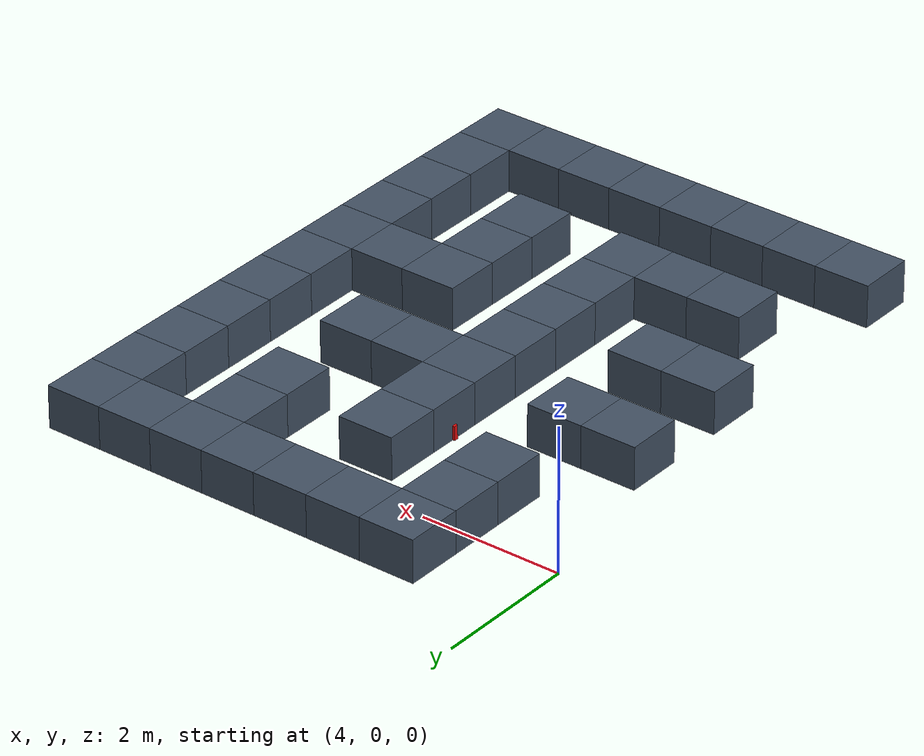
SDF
<sdf version="1.9">
 <world name="limo_maze">
  <model name="wall_8_0">
   <static>true</static>
   <pose>5.6000000000000005 0.8 0.3 0 0 0</pose>
   <link name="body">
    <collision name="collision"><geometry><box><size>0.8 0.8 0.6</size></box></geometry></collision>
    <visual name="visual">
     <geometry><box><size>0.8 0.8 0.6</size></box></geometry>
     <material><ambient>0.26 0.32 0.39 1</ambient><diffuse>0.26 0.32 0.39 1</diffuse></material>
    </visual>
   </link>
  </model>
  <model name="wall_9_0">
   <static>true</static>
   <pose>6.4 0.8 0.3 0 0 0</pose>
   <link name="body">
    <collision name="collision"><geometry><box><size>0.8 0.8 0.6</size></box></geometry></collision>
    <visual name="visual">
     <geometry><box><size>0.8 0.8 0.6</size></box></geometry>
     <material><ambient>0.26 0.32 0.39 1</ambient><diffuse>0.26 0.32 0.39 1</diffuse></material>
    </visual>
   </link>
  </model>
  <model name="wall_10_0">
   <static>true</static>
   <pose>7.2 0.8 0.3 0 0 0</pose>
   <link name="body">
    <collision name="collision"><geometry><box><size>0.8 0.8 0.6</size></box></geometry></collision>
    <visual name="visual">
     <geometry><box><size>0.8 0.8 0.6</size></box></geometry>
     <material><ambient>0.26 0.32 0.39 1</ambient><diffuse>0.26 0.32 0.39 1</diffuse></material>
    </visual>
   </link>
  </model>
  <model name="wall_11_0">
   <static>true</static>
   <pose>8.0 0.8 0.3 0 0 0</pose>
   <link name="body">
    <collision name="collision"><geometry><box><size>0.8 0.8 0.6</size></box></geometry></collision>
    <visual name="visual">
     <geometry><box><size>0.8 0.8 0.6</size></box></geometry>
     <material><ambient>0.26 0.32 0.39 1</ambient><diffuse>0.26 0.32 0.39 1</diffuse></material>
    </visual>
   </link>
  </model>
  <model name="wall_12_0">
   <static>true</static>
   <pose>8.8 0.8 0.3 0 0 0</pose>
   <link name="body">
    <collision name="collision"><geometry><box><size>0.8 0.8 0.6</size></box></geometry></collision>
    <visual name="visual">
     <geometry><box><size>0.8 0.8 0.6</size></box></geometry>
     <material><ambient>0.26 0.32 0.39 1</ambient><diffuse>0.26 0.32 0.39 1</diffuse></material>
    </visual>
   </link>
  </model>
  <model name="wall_13_0">
   <static>true</static>
   <pose>9.600000000000001 0.8 0.3 0 0 0</pose>
   <link name="body">
    <collision name="collision"><geometry><box><size>0.8 0.8 0.6</size></box></geometry></collision>
    <visual name="visual">
     <geometry><box><size>0.8 0.8 0.6</size></box></geometry>
     <material><ambient>0.26 0.32 0.39 1</ambient><diffuse>0.26 0.32 0.39 1</diffuse></material>
    </visual>
   </link>
  </model>
  <model name="wall_14_0">
   <static>true</static>
   <pose>10.4 0.8 0.3 0 0 0</pose>
   <link name="body">
    <collision name="collision"><geometry><box><size>0.8 0.8 0.6</size></box></geometry></collision>
    <visual name="visual">
     <geometry><box><size>0.8 0.8 0.6</size></box></geometry>
     <material><ambient>0.26 0.32 0.39 1</ambient><diffuse>0.26 0.32 0.39 1</diffuse></material>
    </visual>
   </link>
  </model>
  <model name="wall_8_1">
   <static>true</static>
   <pose>5.6000000000000005 0.0 0.3 0 0 0</pose>
   <link name="body">
    <collision name="collision"><geometry><box><size>0.8 0.8 0.6</size></box></geometry></collision>
    <visual name="visual">
     <geometry><box><size>0.8 0.8 0.6</size></box></geometry>
     <material><ambient>0.26 0.32 0.39 1</ambient><diffuse>0.26 0.32 0.39 1</diffuse></material>
    </visual>
   </link>
  </model>
  <model name="wall_12_1">
   <static>true</static>
   <pose>8.8 0.0 0.3 0 0 0</pose>
   <link name="body">
    <collision name="collision"><geometry><box><size>0.8 0.8 0.6</size></box></geometry></collision>
    <visual name="visual">
     <geometry><box><size>0.8 0.8 0.6</size></box></geometry>
     <material><ambient>0.26 0.32 0.39 1</ambient><diffuse>0.26 0.32 0.39 1</diffuse></material>
    </visual>
   </link>
  </model>
  <model name="wall_14_1">
   <static>true</static>
   <pose>10.4 0.0 0.3 0 0 0</pose>
   <link name="body">
    <collision name="collision"><geometry><box><size>0.8 0.8 0.6</size></box></geometry></collision>
    <visual name="visual">
     <geometry><box><size>0.8 0.8 0.6</size></box></geometry>
     <material><ambient>0.26 0.32 0.39 1</ambient><diffuse>0.26 0.32 0.39 1</diffuse></material>
    </visual>
   </link>
  </model>
  <model name="wall_8_2">
   <static>true</static>
   <pose>5.6000000000000005 -0.8 0.3 0 0 0</pose>
   <link name="body">
    <collision name="collision"><geometry><box><size>0.8 0.8 0.6</size></box></geometry></collision>
    <visual name="visual">
     <geometry><box><size>0.8 0.8 0.6</size></box></geometry>
     <material><ambient>0.26 0.32 0.39 1</ambient><diffuse>0.26 0.32 0.39 1</diffuse></material>
    </visual>
   </link>
  </model>
  <model name="wall_10_2">
   <static>true</static>
   <pose>7.2 -0.8 0.3 0 0 0</pose>
   <link name="body">
    <collision name="collision"><geometry><box><size>0.8 0.8 0.6</size></box></geometry></collision>
    <visual name="visual">
     <geometry><box><size>0.8 0.8 0.6</size></box></geometry>
     <material><ambient>0.26 0.32 0.39 1</ambient><diffuse>0.26 0.32 0.39 1</diffuse></material>
    </visual>
   </link>
  </model>
  <model name="wall_12_2">
   <static>true</static>
   <pose>8.8 -0.8 0.3 0 0 0</pose>
   <link name="body">
    <collision name="collision"><geometry><box><size>0.8 0.8 0.6</size></box></geometry></collision>
    <visual name="visual">
     <geometry><box><size>0.8 0.8 0.6</size></box></geometry>
     <material><ambient>0.26 0.32 0.39 1</ambient><diffuse>0.26 0.32 0.39 1</diffuse></material>
    </visual>
   </link>
  </model>
  <model name="wall_14_2">
   <static>true</static>
   <pose>10.4 -0.8 0.3 0 0 0</pose>
   <link name="body">
    <collision name="collision"><geometry><box><size>0.8 0.8 0.6</size></box></geometry></collision>
    <visual name="visual">
     <geometry><box><size>0.8 0.8 0.6</size></box></geometry>
     <material><ambient>0.26 0.32 0.39 1</ambient><diffuse>0.26 0.32 0.39 1</diffuse></material>
    </visual>
   </link>
  </model>
  <model name="wall_10_3">
   <static>true</static>
   <pose>7.2 -1.6 0.3 0 0 0</pose>
   <link name="body">
    <collision name="collision"><geometry><box><size>0.8 0.8 0.6</size></box></geometry></collision>
    <visual name="visual">
     <geometry><box><size>0.8 0.8 0.6</size></box></geometry>
     <material><ambient>0.26 0.32 0.39 1</ambient><diffuse>0.26 0.32 0.39 1</diffuse></material>
    </visual>
   </link>
  </model>
  <model name="wall_14_3">
   <static>true</static>
   <pose>10.4 -1.6 0.3 0 0 0</pose>
   <link name="body">
    <collision name="collision"><geometry><box><size>0.8 0.8 0.6</size></box></geometry></collision>
    <visual name="visual">
     <geometry><box><size>0.8 0.8 0.6</size></box></geometry>
     <material><ambient>0.26 0.32 0.39 1</ambient><diffuse>0.26 0.32 0.39 1</diffuse></material>
    </visual>
   </link>
  </model>
  <model name="wall_7_4">
   <static>true</static>
   <pose>4.800000000000001 -2.4000000000000004 0.3 0 0 0</pose>
   <link name="body">
    <collision name="collision"><geometry><box><size>0.8 0.8 0.6</size></box></geometry></collision>
    <visual name="visual">
     <geometry><box><size>0.8 0.8 0.6</size></box></geometry>
     <material><ambient>0.26 0.32 0.39 1</ambient><diffuse>0.26 0.32 0.39 1</diffuse></material>
    </visual>
   </link>
  </model>
  <model name="wall_8_4">
   <static>true</static>
   <pose>5.6000000000000005 -2.4000000000000004 0.3 0 0 0</pose>
   <link name="body">
    <collision name="collision"><geometry><box><size>0.8 0.8 0.6</size></box></geometry></collision>
    <visual name="visual">
     <geometry><box><size>0.8 0.8 0.6</size></box></geometry>
     <material><ambient>0.26 0.32 0.39 1</ambient><diffuse>0.26 0.32 0.39 1</diffuse></material>
    </visual>
   </link>
  </model>
  <model name="wall_10_4">
   <static>true</static>
   <pose>7.2 -2.4000000000000004 0.3 0 0 0</pose>
   <link name="body">
    <collision name="collision"><geometry><box><size>0.8 0.8 0.6</size></box></geometry></collision>
    <visual name="visual">
     <geometry><box><size>0.8 0.8 0.6</size></box></geometry>
     <material><ambient>0.26 0.32 0.39 1</ambient><diffuse>0.26 0.32 0.39 1</diffuse></material>
    </visual>
   </link>
  </model>
  <model name="wall_11_4">
   <static>true</static>
   <pose>8.0 -2.4000000000000004 0.3 0 0 0</pose>
   <link name="body">
    <collision name="collision"><geometry><box><size>0.8 0.8 0.6</size></box></geometry></collision>
    <visual name="visual">
     <geometry><box><size>0.8 0.8 0.6</size></box></geometry>
     <material><ambient>0.26 0.32 0.39 1</ambient><diffuse>0.26 0.32 0.39 1</diffuse></material>
    </visual>
   </link>
  </model>
  <model name="wall_12_4">
   <static>true</static>
   <pose>8.8 -2.4000000000000004 0.3 0 0 0</pose>
   <link name="body">
    <collision name="collision"><geometry><box><size>0.8 0.8 0.6</size></box></geometry></collision>
    <visual name="visual">
     <geometry><box><size>0.8 0.8 0.6</size></box></geometry>
     <material><ambient>0.26 0.32 0.39 1</ambient><diffuse>0.26 0.32 0.39 1</diffuse></material>
    </visual>
   </link>
  </model>
  <model name="wall_14_4">
   <static>true</static>
   <pose>10.4 -2.4000000000000004 0.3 0 0 0</pose>
   <link name="body">
    <collision name="collision"><geometry><box><size>0.8 0.8 0.6</size></box></geometry></collision>
    <visual name="visual">
     <geometry><box><size>0.8 0.8 0.6</size></box></geometry>
     <material><ambient>0.26 0.32 0.39 1</ambient><diffuse>0.26 0.32 0.39 1</diffuse></material>
    </visual>
   </link>
  </model>
  <model name="wall_10_5">
   <static>true</static>
   <pose>7.2 -3.2 0.3 0 0 0</pose>
   <link name="body">
    <collision name="collision"><geometry><box><size>0.8 0.8 0.6</size></box></geometry></collision>
    <visual name="visual">
     <geometry><box><size>0.8 0.8 0.6</size></box></geometry>
     <material><ambient>0.26 0.32 0.39 1</ambient><diffuse>0.26 0.32 0.39 1</diffuse></material>
    </visual>
   </link>
  </model>
  <model name="wall_14_5">
   <static>true</static>
   <pose>10.4 -3.2 0.3 0 0 0</pose>
   <link name="body">
    <collision name="collision"><geometry><box><size>0.8 0.8 0.6</size></box></geometry></collision>
    <visual name="visual">
     <geometry><box><size>0.8 0.8 0.6</size></box></geometry>
     <material><ambient>0.26 0.32 0.39 1</ambient><diffuse>0.26 0.32 0.39 1</diffuse></material>
    </visual>
   </link>
  </model>
  <model name="wall_7_6">
   <static>true</static>
   <pose>4.800000000000001 -4.0 0.3 0 0 0</pose>
   <link name="body">
    <collision name="collision"><geometry><box><size>0.8 0.8 0.6</size></box></geometry></collision>
    <visual name="visual">
     <geometry><box><size>0.8 0.8 0.6</size></box></geometry>
     <material><ambient>0.26 0.32 0.39 1</ambient><diffuse>0.26 0.32 0.39 1</diffuse></material>
    </visual>
   </link>
  </model>
  <model name="wall_8_6">
   <static>true</static>
   <pose>5.6000000000000005 -4.0 0.3 0 0 0</pose>
   <link name="body">
    <collision name="collision"><geometry><box><size>0.8 0.8 0.6</size></box></geometry></collision>
    <visual name="visual">
     <geometry><box><size>0.8 0.8 0.6</size></box></geometry>
     <material><ambient>0.26 0.32 0.39 1</ambient><diffuse>0.26 0.32 0.39 1</diffuse></material>
    </visual>
   </link>
  </model>
  <model name="wall_10_6">
   <static>true</static>
   <pose>7.2 -4.0 0.3 0 0 0</pose>
   <link name="body">
    <collision name="collision"><geometry><box><size>0.8 0.8 0.6</size></box></geometry></collision>
    <visual name="visual">
     <geometry><box><size>0.8 0.8 0.6</size></box></geometry>
     <material><ambient>0.26 0.32 0.39 1</ambient><diffuse>0.26 0.32 0.39 1</diffuse></material>
    </visual>
   </link>
  </model>
  <model name="wall_12_6">
   <static>true</static>
   <pose>8.8 -4.0 0.3 0 0 0</pose>
   <link name="body">
    <collision name="collision"><geometry><box><size>0.8 0.8 0.6</size></box></geometry></collision>
    <visual name="visual">
     <geometry><box><size>0.8 0.8 0.6</size></box></geometry>
     <material><ambient>0.26 0.32 0.39 1</ambient><diffuse>0.26 0.32 0.39 1</diffuse></material>
    </visual>
   </link>
  </model>
  <model name="wall_13_6">
   <static>true</static>
   <pose>9.600000000000001 -4.0 0.3 0 0 0</pose>
   <link name="body">
    <collision name="collision"><geometry><box><size>0.8 0.8 0.6</size></box></geometry></collision>
    <visual name="visual">
     <geometry><box><size>0.8 0.8 0.6</size></box></geometry>
     <material><ambient>0.26 0.32 0.39 1</ambient><diffuse>0.26 0.32 0.39 1</diffuse></material>
    </visual>
   </link>
  </model>
  <model name="wall_14_6">
   <static>true</static>
   <pose>10.4 -4.0 0.3 0 0 0</pose>
   <link name="body">
    <collision name="collision"><geometry><box><size>0.8 0.8 0.6</size></box></geometry></collision>
    <visual name="visual">
     <geometry><box><size>0.8 0.8 0.6</size></box></geometry>
     <material><ambient>0.26 0.32 0.39 1</ambient><diffuse>0.26 0.32 0.39 1</diffuse></material>
    </visual>
   </link>
  </model>
  <model name="wall_10_7">
   <static>true</static>
   <pose>7.2 -4.800000000000001 0.3 0 0 0</pose>
   <link name="body">
    <collision name="collision"><geometry><box><size>0.8 0.8 0.6</size></box></geometry></collision>
    <visual name="visual">
     <geometry><box><size>0.8 0.8 0.6</size></box></geometry>
     <material><ambient>0.26 0.32 0.39 1</ambient><diffuse>0.26 0.32 0.39 1</diffuse></material>
    </visual>
   </link>
  </model>
  <model name="wall_12_7">
   <static>true</static>
   <pose>8.8 -4.800000000000001 0.3 0 0 0</pose>
   <link name="body">
    <collision name="collision"><geometry><box><size>0.8 0.8 0.6</size></box></geometry></collision>
    <visual name="visual">
     <geometry><box><size>0.8 0.8 0.6</size></box></geometry>
     <material><ambient>0.26 0.32 0.39 1</ambient><diffuse>0.26 0.32 0.39 1</diffuse></material>
    </visual>
   </link>
  </model>
  <model name="wall_14_7">
   <static>true</static>
   <pose>10.4 -4.800000000000001 0.3 0 0 0</pose>
   <link name="body">
    <collision name="collision"><geometry><box><size>0.8 0.8 0.6</size></box></geometry></collision>
    <visual name="visual">
     <geometry><box><size>0.8 0.8 0.6</size></box></geometry>
     <material><ambient>0.26 0.32 0.39 1</ambient><diffuse>0.26 0.32 0.39 1</diffuse></material>
    </visual>
   </link>
  </model>
  <model name="wall_8_8">
   <static>true</static>
   <pose>5.6000000000000005 -5.6000000000000005 0.3 0 0 0</pose>
   <link name="body">
    <collision name="collision"><geometry><box><size>0.8 0.8 0.6</size></box></geometry></collision>
    <visual name="visual">
     <geometry><box><size>0.8 0.8 0.6</size></box></geometry>
     <material><ambient>0.26 0.32 0.39 1</ambient><diffuse>0.26 0.32 0.39 1</diffuse></material>
    </visual>
   </link>
  </model>
  <model name="wall_9_8">
   <static>true</static>
   <pose>6.4 -5.6000000000000005 0.3 0 0 0</pose>
   <link name="body">
    <collision name="collision"><geometry><box><size>0.8 0.8 0.6</size></box></geometry></collision>
    <visual name="visual">
     <geometry><box><size>0.8 0.8 0.6</size></box></geometry>
     <material><ambient>0.26 0.32 0.39 1</ambient><diffuse>0.26 0.32 0.39 1</diffuse></material>
    </visual>
   </link>
  </model>
  <model name="wall_10_8">
   <static>true</static>
   <pose>7.2 -5.6000000000000005 0.3 0 0 0</pose>
   <link name="body">
    <collision name="collision"><geometry><box><size>0.8 0.8 0.6</size></box></geometry></collision>
    <visual name="visual">
     <geometry><box><size>0.8 0.8 0.6</size></box></geometry>
     <material><ambient>0.26 0.32 0.39 1</ambient><diffuse>0.26 0.32 0.39 1</diffuse></material>
    </visual>
   </link>
  </model>
  <model name="wall_12_8">
   <static>true</static>
   <pose>8.8 -5.6000000000000005 0.3 0 0 0</pose>
   <link name="body">
    <collision name="collision"><geometry><box><size>0.8 0.8 0.6</size></box></geometry></collision>
    <visual name="visual">
     <geometry><box><size>0.8 0.8 0.6</size></box></geometry>
     <material><ambient>0.26 0.32 0.39 1</ambient><diffuse>0.26 0.32 0.39 1</diffuse></material>
    </visual>
   </link>
  </model>
  <model name="wall_14_8">
   <static>true</static>
   <pose>10.4 -5.6000000000000005 0.3 0 0 0</pose>
   <link name="body">
    <collision name="collision"><geometry><box><size>0.8 0.8 0.6</size></box></geometry></collision>
    <visual name="visual">
     <geometry><box><size>0.8 0.8 0.6</size></box></geometry>
     <material><ambient>0.26 0.32 0.39 1</ambient><diffuse>0.26 0.32 0.39 1</diffuse></material>
    </visual>
   </link>
  </model>
  <model name="wall_14_9">
   <static>true</static>
   <pose>10.4 -6.4 0.3 0 0 0</pose>
   <link name="body">
    <collision name="collision"><geometry><box><size>0.8 0.8 0.6</size></box></geometry></collision>
    <visual name="visual">
     <geometry><box><size>0.8 0.8 0.6</size></box></geometry>
     <material><ambient>0.26 0.32 0.39 1</ambient><diffuse>0.26 0.32 0.39 1</diffuse></material>
    </visual>
   </link>
  </model>
  <model name="wall_7_10">
   <static>true</static>
   <pose>4.800000000000001 -7.2 0.3 0 0 0</pose>
   <link name="body">
    <collision name="collision"><geometry><box><size>0.8 0.8 0.6</size></box></geometry></collision>
    <visual name="visual">
     <geometry><box><size>0.8 0.8 0.6</size></box></geometry>
     <material><ambient>0.26 0.32 0.39 1</ambient><diffuse>0.26 0.32 0.39 1</diffuse></material>
    </visual>
   </link>
  </model>
  <model name="wall_8_10">
   <static>true</static>
   <pose>5.6000000000000005 -7.2 0.3 0 0 0</pose>
   <link name="body">
    <collision name="collision"><geometry><box><size>0.8 0.8 0.6</size></box></geometry></collision>
    <visual name="visual">
     <geometry><box><size>0.8 0.8 0.6</size></box></geometry>
     <material><ambient>0.26 0.32 0.39 1</ambient><diffuse>0.26 0.32 0.39 1</diffuse></material>
    </visual>
   </link>
  </model>
  <model name="wall_9_10">
   <static>true</static>
   <pose>6.4 -7.2 0.3 0 0 0</pose>
   <link name="body">
    <collision name="collision"><geometry><box><size>0.8 0.8 0.6</size></box></geometry></collision>
    <visual name="visual">
     <geometry><box><size>0.8 0.8 0.6</size></box></geometry>
     <material><ambient>0.26 0.32 0.39 1</ambient><diffuse>0.26 0.32 0.39 1</diffuse></material>
    </visual>
   </link>
  </model>
  <model name="wall_10_10">
   <static>true</static>
   <pose>7.2 -7.2 0.3 0 0 0</pose>
   <link name="body">
    <collision name="collision"><geometry><box><size>0.8 0.8 0.6</size></box></geometry></collision>
    <visual name="visual">
     <geometry><box><size>0.8 0.8 0.6</size></box></geometry>
     <material><ambient>0.26 0.32 0.39 1</ambient><diffuse>0.26 0.32 0.39 1</diffuse></material>
    </visual>
   </link>
  </model>
  <model name="wall_11_10">
   <static>true</static>
   <pose>8.0 -7.2 0.3 0 0 0</pose>
   <link name="body">
    <collision name="collision"><geometry><box><size>0.8 0.8 0.6</size></box></geometry></collision>
    <visual name="visual">
     <geometry><box><size>0.8 0.8 0.6</size></box></geometry>
     <material><ambient>0.26 0.32 0.39 1</ambient><diffuse>0.26 0.32 0.39 1</diffuse></material>
    </visual>
   </link>
  </model>
  <model name="wall_12_10">
   <static>true</static>
   <pose>8.8 -7.2 0.3 0 0 0</pose>
   <link name="body">
    <collision name="collision"><geometry><box><size>0.8 0.8 0.6</size></box></geometry></collision>
    <visual name="visual">
     <geometry><box><size>0.8 0.8 0.6</size></box></geometry>
     <material><ambient>0.26 0.32 0.39 1</ambient><diffuse>0.26 0.32 0.39 1</diffuse></material>
    </visual>
   </link>
  </model>
  <model name="wall_13_10">
   <static>true</static>
   <pose>9.600000000000001 -7.2 0.3 0 0 0</pose>
   <link name="body">
    <collision name="collision"><geometry><box><size>0.8 0.8 0.6</size></box></geometry></collision>
    <visual name="visual">
     <geometry><box><size>0.8 0.8 0.6</size></box></geometry>
     <material><ambient>0.26 0.32 0.39 1</ambient><diffuse>0.26 0.32 0.39 1</diffuse></material>
    </visual>
   </link>
  </model>
  <model name="wall_14_10">
   <static>true</static>
   <pose>10.4 -7.2 0.3 0 0 0</pose>
   <link name="body">
    <collision name="collision"><geometry><box><size>0.8 0.8 0.6</size></box></geometry></collision>
    <visual name="visual">
     <geometry><box><size>0.8 0.8 0.6</size></box></geometry>
     <material><ambient>0.26 0.32 0.39 1</ambient><diffuse>0.26 0.32 0.39 1</diffuse></material>
    </visual>
   </link>
  </model>
  <model name="target_surrogate_0">
   <static>true</static>
   <pose>9.600000000000001 0.385 0.1 0 0 0</pose>
   <link name="body">
    <collision name="collision"><geometry><box><size>0.06 0.03 0.2</size></box></geometry></collision>
    <visual name="visual">
     <geometry><box><size>0.06 0.03 0.2</size></box></geometry>
     <material><ambient>0.9 0.05 0.05 1</ambient><diffuse>0.9 0.05 0.05 1</diffuse></material>
    </visual>
   </link>
  </model>
  <model name="target_surrogate_1">
   <static>true</static>
   <pose>6.785 -1.6 0.1 0 0 0</pose>
   <link name="body">
    <collision name="collision"><geometry><box><size>0.03 0.06 0.2</size></box></geometry></collision>
    <visual name="visual">
     <geometry><box><size>0.03 0.06 0.2</size></box></geometry>
     <material><ambient>0.9 0.05 0.05 1</ambient><diffuse>0.9 0.05 0.05 1</diffuse></material>
    </visual>
   </link>
  </model>
  <model name="target_surrogate_3">
   <static>true</static>
   <pose>9.600000000000001 -4.415000000000001 0.1 0 0 0</pose>
   <link name="body">
    <collision name="collision"><geometry><box><size>0.06 0.03 0.2</size></box></geometry></collision>
    <visual name="visual">
     <geometry><box><size>0.06 0.03 0.2</size></box></geometry>
     <material><ambient>0.9 0.05 0.05 1</ambient><diffuse>0.9 0.05 0.05 1</diffuse></material>
    </visual>
   </link>
  </model>
 </world>
</sdf>
